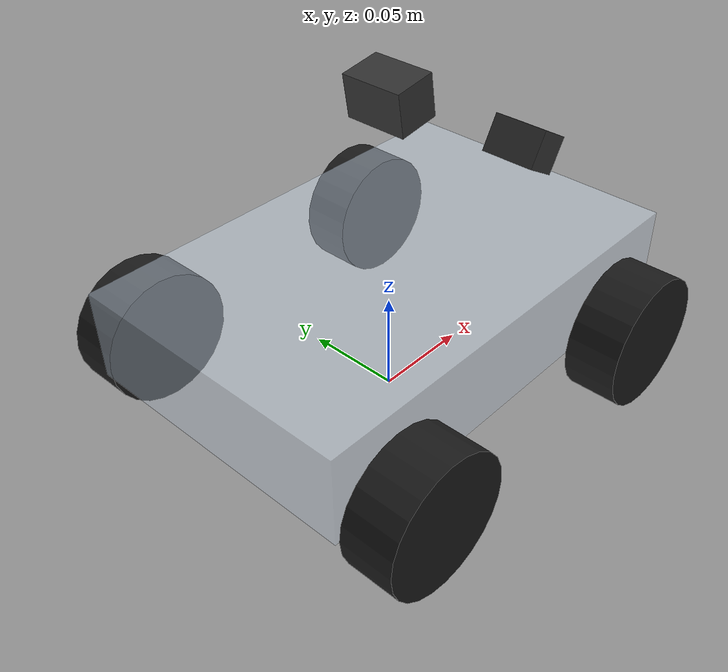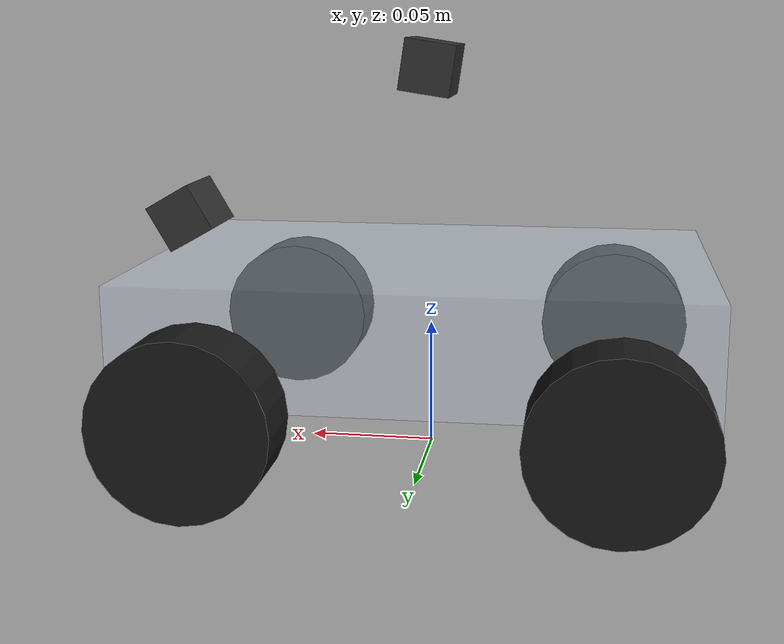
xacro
<?xml version="1.0"?>
<robot name="robo404" xmlns:xacro="http://www.ros.org/wiki/xacro">

  <xacro:include filename="$(find robo_description)/urdf/macros.xacro" />

  <!-- ======================= Parameters ======================= -->
  <xacro:property name="chassis_length" value="0.22"  />
  <xacro:property name="chassis_width"  value="0.145" />
  <xacro:property name="chassis_height" value="0.045" />
  <xacro:property name="chassis_mass"   value="0.6"   />

  <xacro:property name="wheel_radius"   value="0.033" />
  <xacro:property name="wheel_width"    value="0.026" />
  <xacro:property name="wheel_mass"     value="0.05"  />

  <!-- wheel placement relative to base_link (centre of chassis, at axle height) -->
  <xacro:property name="wheel_xoff" value="0.075"  />  <!-- half wheelbase     -->
  <xacro:property name="wheel_yoff" value="0.0855" />  <!-- half track width   -->
  <xacro:property name="wheel_separation" value="${2*wheel_yoff}" />

  <!-- bottom camera placement (looks down at the line) -->
  <xacro:property name="bot_cam_x" value="${chassis_length/2 - 0.01}" />
  <xacro:property name="bot_cam_z" value="0.06"  />
  <xacro:property name="bot_cam_pitch" value="0.52" />   <!-- ~30 deg down -->

  <!-- top camera placement (looks forward/slightly up for traffic lights) -->
  <xacro:property name="top_cam_x" value="0.0" />
  <xacro:property name="top_cam_z" value="0.12" />
  <xacro:property name="top_cam_pitch" value="-0.15" />   <!-- ~8.6 deg up -->

  <!-- ======================= Materials ======================= -->
  <material name="acrylic"><color rgba="0.85 0.92 1.0 0.4"/></material>
  <material name="tyre_black"><color rgba="0.1 0.1 0.1 1.0"/></material>
  <material name="cam_grey"><color rgba="0.2 0.2 0.2 1.0"/></material>

  <!-- ======================= Base ======================= -->
  <link name="base_footprint"/>

  <joint name="base_joint" type="fixed">
    <parent link="base_footprint"/>
    <child  link="base_link"/>
    <origin xyz="0 0 ${wheel_radius}" rpy="0 0 0"/>
  </joint>

  <link name="base_link">
    <visual>
      <origin xyz="0 0 ${chassis_height/2}" rpy="0 0 0"/>
      <geometry>
        <box size="${chassis_length} ${chassis_width} ${chassis_height}"/>
      </geometry>
      <material name="acrylic"/>
    </visual>
    <collision>
      <origin xyz="0 0 ${chassis_height/2}" rpy="0 0 0"/>
      <geometry>
        <box size="${chassis_length} ${chassis_width} ${chassis_height}"/>
      </geometry>
    </collision>
    <inertial>
      <origin xyz="0 0 ${chassis_height/2}" rpy="0 0 0"/>
      <mass value="${chassis_mass}"/>
      <xacro:box_inertia m="${chassis_mass}" x="${chassis_length}"
                         y="${chassis_width}" z="${chassis_height}"/>
    </inertial>
  </link>

  <!-- ======================= Wheel macro ======================= -->
  <!-- x_reflect:  +1 front, -1 rear     y_reflect: +1 left, -1 right -->
  <xacro:macro name="wheel" params="prefix x_reflect y_reflect">
    <link name="${prefix}_wheel">
      <visual>
        <origin xyz="0 0 0" rpy="${pi/2} 0 0"/>
        <geometry>
          <cylinder radius="${wheel_radius}" length="${wheel_width}"/>
        </geometry>
        <material name="tyre_black"/>
      </visual>
      <collision>
        <origin xyz="0 0 0" rpy="${pi/2} 0 0"/>
        <geometry>
          <cylinder radius="${wheel_radius}" length="${wheel_width}"/>
        </geometry>
      </collision>
      <inertial>
        <origin xyz="0 0 0" rpy="0 0 0"/>
        <mass value="${wheel_mass}"/>
        <xacro:wheel_inertia m="${wheel_mass}" r="${wheel_radius}" h="${wheel_width}"/>
      </inertial>
    </link>

    <joint name="${prefix}_wheel_joint" type="continuous">
      <parent link="base_link"/>
      <child  link="${prefix}_wheel"/>
      <origin xyz="${x_reflect*wheel_xoff} ${y_reflect*wheel_yoff} 0" rpy="0 0 0"/>
      <axis xyz="0 1 0"/>
    </joint>
  </xacro:macro>

  <xacro:wheel prefix="front_left"  x_reflect="1"  y_reflect="1"/>
  <xacro:wheel prefix="front_right" x_reflect="1"  y_reflect="-1"/>
  <xacro:wheel prefix="rear_left"   x_reflect="-1" y_reflect="1"/>
  <xacro:wheel prefix="rear_right"  x_reflect="-1" y_reflect="-1"/>

  <!-- ======================= Bottom Camera (line follower) ======================= -->
  <link name="bottom_camera_link">
    <visual>
      <geometry><box size="0.02 0.03 0.02"/></geometry>
      <material name="cam_grey"/>
    </visual>
    <collision>
      <geometry><box size="0.02 0.03 0.02"/></geometry>
    </collision>
    <inertial>
      <mass value="0.02"/>
      <xacro:box_inertia m="0.02" x="0.02" y="0.03" z="0.02"/>
    </inertial>
  </link>

  <joint name="bottom_camera_joint" type="fixed">
    <parent link="base_link"/>
    <child  link="bottom_camera_link"/>
    <origin xyz="${bot_cam_x} 0 ${bot_cam_z}" rpy="0 ${bot_cam_pitch} 0"/>
  </joint>

  <!-- Optical frame: REP-103 camera convention (z forward, x right, y down) -->
  <link name="bottom_camera_optical_link"/>
  <joint name="bottom_camera_optical_joint" type="fixed">
    <parent link="bottom_camera_link"/>
    <child  link="bottom_camera_optical_link"/>
    <origin xyz="0 0 0" rpy="${-pi/2} 0 ${-pi/2}"/>
  </joint>

  <!-- ======================= Top Camera (traffic light / YOLO) ======================= -->
  <link name="top_camera_link">
    <visual>
      <geometry><box size="0.02 0.03 0.02"/></geometry>
      <material name="cam_grey"/>
    </visual>
    <collision>
      <geometry><box size="0.02 0.03 0.02"/></geometry>
    </collision>
    <inertial>
      <mass value="0.02"/>
      <xacro:box_inertia m="0.02" x="0.02" y="0.03" z="0.02"/>
    </inertial>
  </link>

  <joint name="top_camera_joint" type="fixed">
    <parent link="base_link"/>
    <child  link="top_camera_link"/>
    <origin xyz="${top_cam_x} 0 ${top_cam_z}" rpy="0 ${top_cam_pitch} 0"/>
  </joint>

  <link name="top_camera_optical_link"/>
  <joint name="top_camera_optical_joint" type="fixed">
    <parent link="top_camera_link"/>
    <child  link="top_camera_optical_link"/>
    <origin xyz="0 0 0" rpy="${-pi/2} 0 ${-pi/2}"/>
  </joint>

  <!-- ======================= Gazebo plugins ======================= -->
  <xacro:include filename="$(find robo_description)/urdf/robo404.gazebo.xacro" />

</robot>

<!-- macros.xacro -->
<robot xmlns:xacro="http://www.ros.org/wiki/xacro">

  <!-- Inertia of a solid box about its center -->
  <xacro:macro name="box_inertia" params="m x y z">
    <inertia
      ixx="${(1.0/12.0) * m * (y*y + z*z)}" ixy="0.0" ixz="0.0"
      iyy="${(1.0/12.0) * m * (x*x + z*z)}" iyz="0.0"
      izz="${(1.0/12.0) * m * (x*x + y*y)}" />
  </xacro:macro>

  <!-- Inertia of a solid cylinder whose symmetry axis points along the local Y
       axis (the wheels are rotated so their axle is the Y axis). -->
  <xacro:macro name="wheel_inertia" params="m r h">
    <inertia
      ixx="${(1.0/12.0) * m * (3.0*r*r + h*h)}" ixy="0.0" ixz="0.0"
      iyy="${0.5 * m * r * r}"                  iyz="0.0"
      izz="${(1.0/12.0) * m * (3.0*r*r + h*h)}" />
  </xacro:macro>

</robot>
